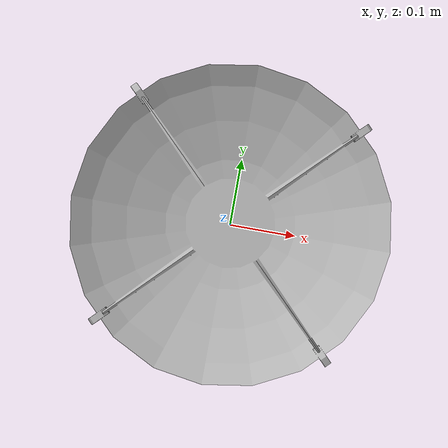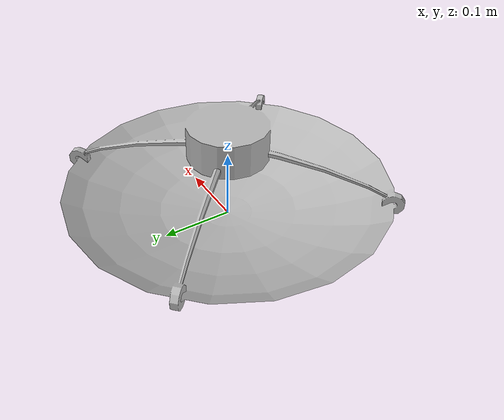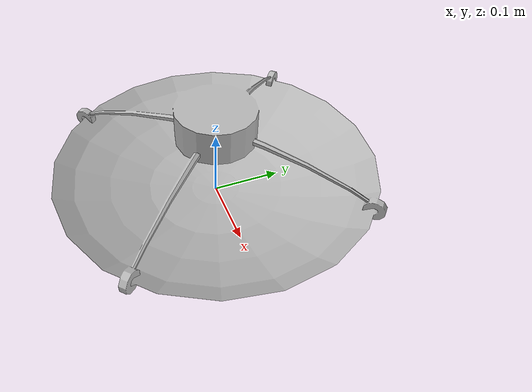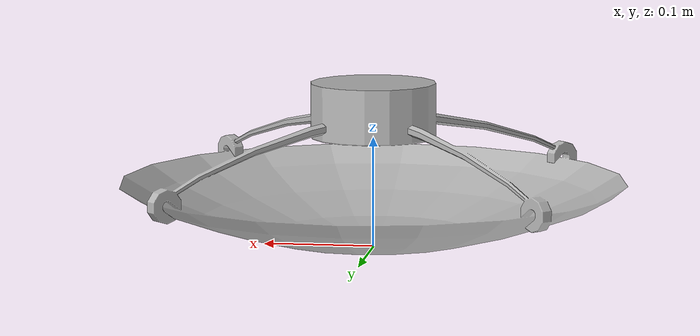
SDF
<?xml version='1.0'?>
<sdf version='1.4'>
  <model name='s__433'>
    <pose>0 0 0 0 0 0</pose>
    <static>true</static>
    <link name='link'>
      <collision name='collision'>
        <pose>0 0 0 0 0 0</pose>
        <geometry>
          <box>
            <size>0.46 0.46 2</size>
          </box>
        </geometry>
      </collision>
      <visual name='visual'>
        <pose>0 0 0 0 0 0</pose>
        <geometry>
          <mesh><uri>model://s__433/s__433.dae</uri></mesh>
        </geometry>
      </visual>
    </link>
  </model>
</sdf>
